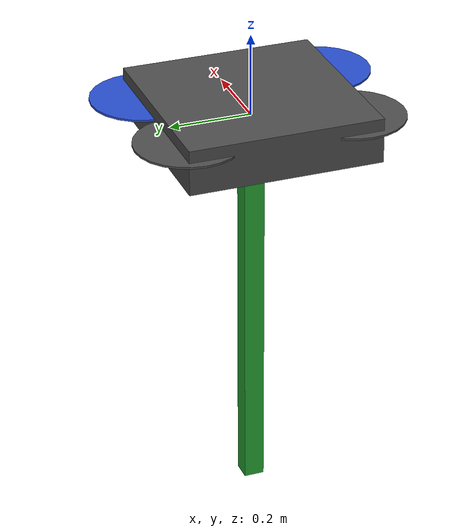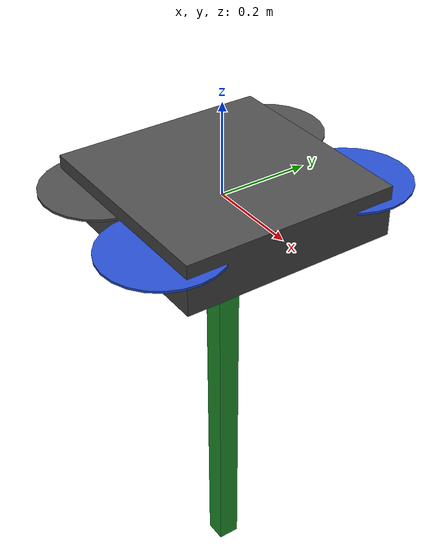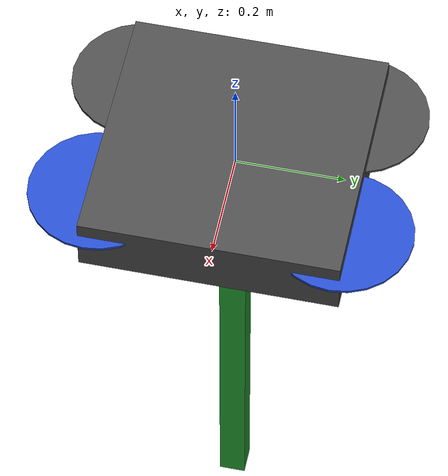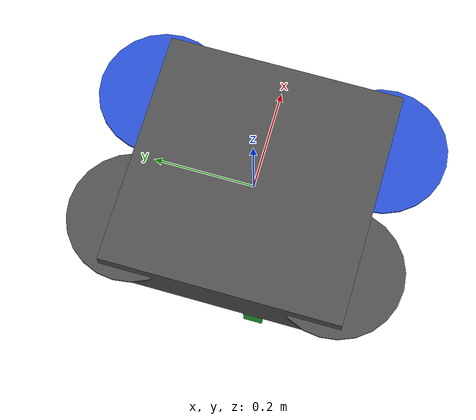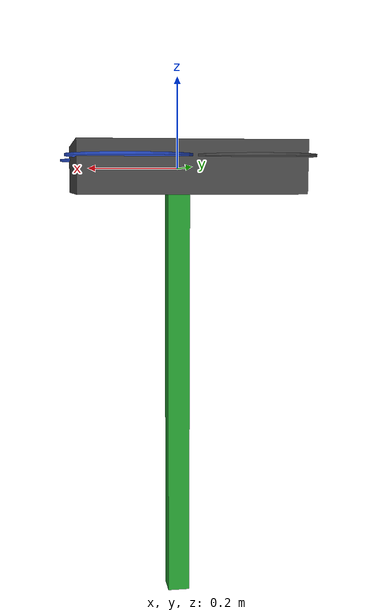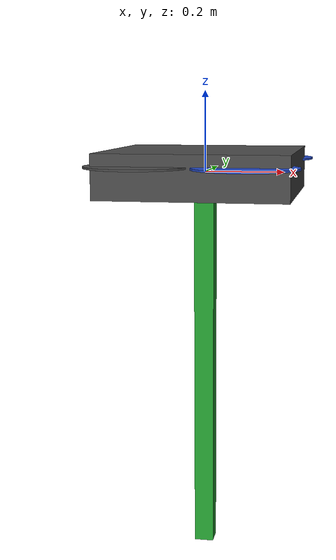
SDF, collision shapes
<?xml version='1.0'?>
<sdf version='1.5'>
  <model name='iris_fpv_cam'>

    <link name='base_link'>
      <pose frame=''>0 0 0 0 -0 0</pose>
      <inertial>
        <pose frame=''>0 0 0 0 -0 0</pose>
        <mass>1.5</mass>
        <inertia>
          <ixx>0.029125</ixx>
          <ixy>0</ixy>
          <ixz>0</ixz>
          <iyy>0.029125</iyy>
          <iyz>0</iyz>
          <izz>0.055225</izz>
        </inertia>
      </inertial>
      <collision name='base_link_inertia_collision'>
        <pose frame=''>0 0 0 0 -0 0</pose>
        <geometry>
          <box>
            <size>0.47 0.47 0.11</size>
          </box>
        </geometry>
        <surface>
          <contact>
            <ode>
              <min_depth>0.001</min_depth>
              <max_vel>0</max_vel>
            </ode>
          </contact>
          <friction>
            <ode/>
          </friction>
        </surface>
      </collision>
      <visual name='base_link_inertia_visual'>
        <pose frame=''>0 0 0 0 -0 0</pose>
        <geometry>
          <mesh>
            <scale>1 1 1</scale>
            <uri>model://rotors_description/meshes/iris.stl</uri>
          </mesh>
        </geometry>
        <material>
          <script>
            <name>Gazebo/DarkGrey</name>
            <uri>file://media/materials/scripts/gazebo.material</uri>
          </script>
        </material>
      </visual>
      <gravity>1</gravity>
      <velocity_decay/>
    </link>
    <link name='/imu_link'>
      <pose frame=''>0 0 0 0 -0 0</pose>
      <inertial>
        <pose frame=''>0 0 0 0 -0 0</pose>
        <mass>0.015</mass>
        <inertia>
          <ixx>1e-05</ixx>
          <ixy>0</ixy>
          <ixz>0</ixz>
          <iyy>1e-05</iyy>
          <iyz>0</iyz>
          <izz>1e-05</izz>
        </inertia>
      </inertial>
    </link>
    <joint name='/imu_joint' type='revolute'>
      <child>/imu_link</child>
      <parent>base_link</parent>
      <axis>
        <xyz>1 0 0</xyz>
        <limit>
          <lower>0</lower>
          <upper>0</upper>
          <effort>0</effort>
          <velocity>0</velocity>
        </limit>
        <dynamics>
          <spring_reference>0</spring_reference>
          <spring_stiffness>0</spring_stiffness>
        </dynamics>
        <use_parent_model_frame>1</use_parent_model_frame>
      </axis>
    </joint>
    <link name='rotor_0'>
      <pose frame=''>0.13 -0.22 0.023 0 -0 0</pose>
      <inertial>
        <pose frame=''>0 0 0 0 -0 0</pose>
        <mass>0.005</mass>
        <inertia>
          <ixx>9.75e-07</ixx>
          <ixy>0</ixy>
          <ixz>0</ixz>
          <iyy>0.000273104</iyy>
          <iyz>0</iyz>
          <izz>0.000274004</izz>
        </inertia>
      </inertial>
      <collision name='rotor_0_collision'>
        <pose frame=''>0 0 0 0 -0 0</pose>
        <geometry>
          <cylinder>
            <length>0.005</length>
            <radius>0.128</radius>
          </cylinder>
        </geometry>
        <surface>
          <contact>
            <ode/>
          </contact>
          <friction>
            <ode/>
          </friction>
        </surface>
      </collision>
      <visual name='rotor_0_visual'>
        <pose frame=''>0 0 0 0 -0 0</pose>
        <geometry>
          <mesh>
            <scale>1 1 1</scale>
            <uri>model://rotors_description/meshes/iris_prop_ccw.dae</uri>
          </mesh>
        </geometry>
        <material>
          <script>
            <name>Gazebo/Blue</name>
            <uri>file://media/materials/scripts/gazebo.material</uri>
          </script>
        </material>
      </visual>
      <gravity>1</gravity>
      <velocity_decay/>
    </link>
    <joint name='rotor_0_joint' type='revolute'>
      <child>rotor_0</child>
      <parent>base_link</parent>
      <axis>
        <xyz>0 0 1</xyz>
        <limit>
          <lower>-1e+16</lower>
          <upper>1e+16</upper>
        </limit>
        <dynamics>
          <spring_reference>0</spring_reference>
          <spring_stiffness>0</spring_stiffness>
        </dynamics>
        <use_parent_model_frame>1</use_parent_model_frame>
      </axis>
    </joint>
    <link name='rotor_1'>
      <pose frame=''>-0.13 0.2 0.023 0 -0 0</pose>
      <inertial>
        <pose frame=''>0 0 0 0 -0 0</pose>
        <mass>0.005</mass>
        <inertia>
          <ixx>9.75e-07</ixx>
          <ixy>0</ixy>
          <ixz>0</ixz>
          <iyy>0.000273104</iyy>
          <iyz>0</iyz>
          <izz>0.000274004</izz>
        </inertia>
      </inertial>
      <collision name='rotor_1_collision'>
        <pose frame=''>0 0 0 0 -0 0</pose>
        <geometry>
          <cylinder>
            <length>0.005</length>
            <radius>0.128</radius>
          </cylinder>
        </geometry>
        <surface>
          <contact>
            <ode/>
          </contact>
          <friction>
            <ode/>
          </friction>
        </surface>
      </collision>
      <visual name='rotor_1_visual'>
        <pose frame=''>0 0 0 0 -0 0</pose>
        <geometry>
          <mesh>
            <scale>1 1 1</scale>
            <uri>model://rotors_description/meshes/iris_prop_ccw.dae</uri>
          </mesh>
        </geometry>
        <material>
          <script>
            <name>Gazebo/DarkGrey</name>
            <uri>file://media/materials/scripts/gazebo.material</uri>
          </script>
        </material>
      </visual>
      <gravity>1</gravity>
      <velocity_decay/>
    </link>
    <joint name='rotor_1_joint' type='revolute'>
      <child>rotor_1</child>
      <parent>base_link</parent>
      <axis>
        <xyz>0 0 1</xyz>
        <limit>
          <lower>-1e+16</lower>
          <upper>1e+16</upper>
        </limit>
        <dynamics>
          <spring_reference>0</spring_reference>
          <spring_stiffness>0</spring_stiffness>
        </dynamics>
        <use_parent_model_frame>1</use_parent_model_frame>
      </axis>
    </joint>
    <link name='rotor_2'>
      <pose frame=''>0.13 0.22 0.023 0 -0 0</pose>
      <inertial>
        <pose frame=''>0 0 0 0 -0 0</pose>
        <mass>0.005</mass>
        <inertia>
          <ixx>9.75e-07</ixx>
          <ixy>0</ixy>
          <ixz>0</ixz>
          <iyy>0.000273104</iyy>
          <iyz>0</iyz>
          <izz>0.000274004</izz>
        </inertia>
      </inertial>
      <collision name='rotor_2_collision'>
        <pose frame=''>0 0 0 0 -0 0</pose>
        <geometry>
          <cylinder>
            <length>0.005</length>
            <radius>0.128</radius>
          </cylinder>
        </geometry>
        <surface>
          <contact>
            <ode/>
          </contact>
          <friction>
            <ode/>
          </friction>
        </surface>
      </collision>
      <visual name='rotor_2_visual'>
        <pose frame=''>0 0 0 0 -0 0</pose>
        <geometry>
          <mesh>
            <scale>1 1 1</scale>
            <uri>model://rotors_description/meshes/iris_prop_cw.dae</uri>
          </mesh>
        </geometry>
        <material>
          <script>
            <name>Gazebo/Blue</name>
            <uri>file://media/materials/scripts/gazebo.material</uri>
          </script>
        </material>
      </visual>
      <gravity>1</gravity>
      <velocity_decay/>
    </link>
    <joint name='rotor_2_joint' type='revolute'>
      <child>rotor_2</child>
      <parent>base_link</parent>
      <axis>
        <xyz>0 0 1</xyz>
        <limit>
          <lower>-1e+16</lower>
          <upper>1e+16</upper>
        </limit>
        <dynamics>
          <spring_reference>0</spring_reference>
          <spring_stiffness>0</spring_stiffness>
        </dynamics>
        <use_parent_model_frame>1</use_parent_model_frame>
      </axis>
    </joint>
    <link name='rotor_3'>
      <pose frame=''>-0.13 -0.2 0.023 0 -0 0</pose>
      <inertial>
        <pose frame=''>0 0 0 0 -0 0</pose>
        <mass>0.005</mass>
        <inertia>
          <ixx>9.75e-07</ixx>
          <ixy>0</ixy>
          <ixz>0</ixz>
          <iyy>0.000273104</iyy>
          <iyz>0</iyz>
          <izz>0.000274004</izz>
        </inertia>
      </inertial>
      <collision name='rotor_3_collision'>
        <pose frame=''>0 0 0 0 -0 0</pose>
        <geometry>
          <cylinder>
            <length>0.005</length>
            <radius>0.128</radius>
          </cylinder>
        </geometry>
        <surface>
          <contact>
            <ode/>
          </contact>
          <friction>
            <ode/>
          </friction>
        </surface>
      </collision>
      <visual name='rotor_3_visual'>
        <pose frame=''>0 0 0 0 -0 0</pose>
        <geometry>
          <mesh>
            <scale>1 1 1</scale>
            <uri>model://rotors_description/meshes/iris_prop_cw.dae</uri>
          </mesh>
        </geometry>
        <material>
          <script>
            <name>Gazebo/DarkGrey</name>
            <uri>file://media/materials/scripts/gazebo.material</uri>
          </script>
        </material>
      </visual>
      <gravity>1</gravity>
      <velocity_decay/>
    </link>
    <joint name='rotor_3_joint' type='revolute'>
      <child>rotor_3</child>
      <parent>base_link</parent>
      <axis>
        <xyz>0 0 1</xyz>
        <limit>
          <lower>-1e+16</lower>
          <upper>1e+16</upper>
        </limit>
        <dynamics>
          <spring_reference>0</spring_reference>
          <spring_stiffness>0</spring_stiffness>
        </dynamics>
        <use_parent_model_frame>1</use_parent_model_frame>
      </axis>
    </joint>
    <plugin name='rosbag' filename='libgazebo_multirotor_base_plugin.so'>
      <robotNamespace/>
      <linkName>base_link</linkName>
      <rotorVelocitySlowdownSim>10</rotorVelocitySlowdownSim>
    </plugin>
    <plugin name='front_right_motor_model' filename='libgazebo_motor_model.so'>
      <robotNamespace/>
      <jointName>rotor_0_joint</jointName>
      <linkName>rotor_0</linkName>
      <turningDirection>ccw</turningDirection>
      <timeConstantUp>0.0125</timeConstantUp>
      <timeConstantDown>0.025</timeConstantDown>
      <maxRotVelocity>1100</maxRotVelocity>
      <motorConstant>8.54858e-06</motorConstant>
      <momentConstant>0.06</momentConstant>
      <commandSubTopic>/gazebo/command/motor_speed</commandSubTopic>
      <motorNumber>0</motorNumber>
      <rotorDragCoefficient>0.000175</rotorDragCoefficient>
      <rollingMomentCoefficient>1e-06</rollingMomentCoefficient>
      <motorSpeedPubTopic>/motor_speed/0</motorSpeedPubTopic>
      <rotorVelocitySlowdownSim>10</rotorVelocitySlowdownSim>
    </plugin>
    <plugin name='back_left_motor_model' filename='libgazebo_motor_model.so'>
      <robotNamespace/>
      <jointName>rotor_1_joint</jointName>
      <linkName>rotor_1</linkName>
      <turningDirection>ccw</turningDirection>
      <timeConstantUp>0.0125</timeConstantUp>
      <timeConstantDown>0.025</timeConstantDown>
      <maxRotVelocity>1100</maxRotVelocity>
      <motorConstant>8.54858e-06</motorConstant>
      <momentConstant>0.06</momentConstant>
      <commandSubTopic>/gazebo/command/motor_speed</commandSubTopic>
      <motorNumber>1</motorNumber>
      <rotorDragCoefficient>0.000175</rotorDragCoefficient>
      <rollingMomentCoefficient>1e-06</rollingMomentCoefficient>
      <motorSpeedPubTopic>/motor_speed/1</motorSpeedPubTopic>
      <rotorVelocitySlowdownSim>10</rotorVelocitySlowdownSim>
    </plugin>
    <plugin name='front_left_motor_model' filename='libgazebo_motor_model.so'>
      <robotNamespace/>
      <jointName>rotor_2_joint</jointName>
      <linkName>rotor_2</linkName>
      <turningDirection>cw</turningDirection>
      <timeConstantUp>0.0125</timeConstantUp>
      <timeConstantDown>0.025</timeConstantDown>
      <maxRotVelocity>1100</maxRotVelocity>
      <motorConstant>8.54858e-06</motorConstant>
      <momentConstant>0.06</momentConstant>
      <commandSubTopic>/gazebo/command/motor_speed</commandSubTopic>
      <motorNumber>2</motorNumber>
      <rotorDragCoefficient>0.000175</rotorDragCoefficient>
      <rollingMomentCoefficient>1e-06</rollingMomentCoefficient>
      <motorSpeedPubTopic>/motor_speed/2</motorSpeedPubTopic>
      <rotorVelocitySlowdownSim>10</rotorVelocitySlowdownSim>
    </plugin>
    <plugin name='back_right_motor_model' filename='libgazebo_motor_model.so'>
      <robotNamespace/>
      <jointName>rotor_3_joint</jointName>
      <linkName>rotor_3</linkName>
      <turningDirection>cw</turningDirection>
      <timeConstantUp>0.0125</timeConstantUp>
      <timeConstantDown>0.025</timeConstantDown>
      <maxRotVelocity>1100</maxRotVelocity>
      <motorConstant>8.54858e-06</motorConstant>
      <momentConstant>0.06</momentConstant>
      <commandSubTopic>/gazebo/command/motor_speed</commandSubTopic>
      <motorNumber>3</motorNumber>
      <rotorDragCoefficient>0.000175</rotorDragCoefficient>
      <rollingMomentCoefficient>1e-06</rollingMomentCoefficient>
      <motorSpeedPubTopic>/motor_speed/3</motorSpeedPubTopic>
      <rotorVelocitySlowdownSim>10</rotorVelocitySlowdownSim>
    </plugin>
    <plugin name='gps_plugin' filename='libgazebo_gps_plugin.so'>
      <robotNamespace/>
      <gpsNoise>1</gpsNoise>
    </plugin>
    <plugin name='magnetometer_plugin' filename='libgazebo_magnetometer_plugin.so'>
      <robotNamespace/>
      <pubRate>100</pubRate>
      <noiseDensity>0.0004</noiseDensity>
      <randomWalk>6.4e-06</randomWalk>
      <biasCorrelationTime>600</biasCorrelationTime>
      <magTopic>/mag</magTopic>
    </plugin>
    <plugin name='barometer_plugin' filename='libgazebo_barometer_plugin.so'>
      <robotNamespace/>
      <pubRate>50</pubRate>
      <baroTopic>/baro</baroTopic>
    </plugin>
    <plugin name='mavlink_interface' filename='libgazebo_mavlink_interface.so'>
      <robotNamespace/>
      <imuSubTopic>/imu</imuSubTopic>
      <gpsSubTopic>/gps</gpsSubTopic>
      <magSubTopic>/mag</magSubTopic>
      <baroSubTopic>/baro</baroSubTopic>
      <mavlink_addr>INADDR_ANY</mavlink_addr>
      <mavlink_udp_port>14560</mavlink_udp_port>
      <mavlink_tcp_port>4560</mavlink_tcp_port>
      <serialEnabled>0</serialEnabled>
      <serialDevice>/dev/ttyACM0</serialDevice>
      <baudRate>921600</baudRate>
      <qgc_addr>INADDR_ANY</qgc_addr>
      <qgc_udp_port>14550</qgc_udp_port>
      <sdk_addr>INADDR_ANY</sdk_addr>
      <sdk_udp_port>14540</sdk_udp_port>
      <hil_mode>0</hil_mode>
      <hil_state_level>0</hil_state_level>
      <vehicle_is_tailsitter>0</vehicle_is_tailsitter>
      <send_vision_estimation>0</send_vision_estimation>
      <send_odometry>1</send_odometry>
      <enable_lockstep>1</enable_lockstep>
      <use_tcp>1</use_tcp>
      <motorSpeedCommandPubTopic>/gazebo/command/motor_speed</motorSpeedCommandPubTopic>
      <control_channels>
        <channel name='rotor1'>
          <input_index>0</input_index>
          <input_offset>0</input_offset>
          <input_scaling>1000</input_scaling>
          <zero_position_disarmed>0</zero_position_disarmed>
          <zero_position_armed>100</zero_position_armed>
          <joint_control_type>velocity</joint_control_type>
        </channel>
        <channel name='rotor2'>
          <input_index>1</input_index>
          <input_offset>0</input_offset>
          <input_scaling>1000</input_scaling>
          <zero_position_disarmed>0</zero_position_disarmed>
          <zero_position_armed>100</zero_position_armed>
          <joint_control_type>velocity</joint_control_type>
        </channel>
        <channel name='rotor3'>
          <input_index>2</input_index>
          <input_offset>0</input_offset>
          <input_scaling>1000</input_scaling>
          <zero_position_disarmed>0</zero_position_disarmed>
          <zero_position_armed>100</zero_position_armed>
          <joint_control_type>velocity</joint_control_type>
        </channel>
        <channel name='rotor4'>
          <input_index>3</input_index>
          <input_offset>0</input_offset>
          <input_scaling>1000</input_scaling>
          <zero_position_disarmed>0</zero_position_disarmed>
          <zero_position_armed>100</zero_position_armed>
          <joint_control_type>velocity</joint_control_type>
        </channel>
        <channel name='rotor5'>
          <input_index>4</input_index>
          <input_offset>1</input_offset>
          <input_scaling>324.6</input_scaling>
          <zero_position_disarmed>0</zero_position_disarmed>
          <zero_position_armed>0</zero_position_armed>
          <joint_control_type>velocity</joint_control_type>
          <joint_control_pid>
            <p>0.1</p>
            <i>0</i>
            <d>0</d>
            <iMax>0.0</iMax>
            <iMin>0.0</iMin>
            <cmdMax>2</cmdMax>
            <cmdMin>-2</cmdMin>
          </joint_control_pid>
          <joint_name>zephyr_delta_wing::propeller_joint</joint_name>
        </channel>
        <channel name='rotor6'>
          <input_index>5</input_index>
          <input_offset>0</input_offset>
          <input_scaling>0.524</input_scaling>
          <zero_position_disarmed>0</zero_position_disarmed>
          <zero_position_armed>0</zero_position_armed>
          <joint_control_type>position</joint_control_type>
          <joint_name>zephyr_delta_wing::flap_left_joint</joint_name>
          <joint_control_pid>
            <p>10.0</p>
            <i>0</i>
            <d>0</d>
            <iMax>0</iMax>
            <iMin>0</iMin>
            <cmdMax>20</cmdMax>
            <cmdMin>-20</cmdMin>
          </joint_control_pid>
        </channel>
        <channel name='rotor7'>
          <input_index>6</input_index>
          <input_offset>0</input_offset>
          <input_scaling>0.524</input_scaling>
          <zero_position_disarmed>0</zero_position_disarmed>
          <zero_position_armed>0</zero_position_armed>
          <joint_control_type>position</joint_control_type>
          <joint_name>zephyr_delta_wing::flap_right_joint</joint_name>
          <joint_control_pid>
            <p>10.0</p>
            <i>0</i>
            <d>0</d>
            <iMax>0</iMax>
            <iMin>0</iMin>
            <cmdMax>20</cmdMax>
            <cmdMin>-20</cmdMin>
          </joint_control_pid>
        </channel>
        <channel name='rotor8'>
          <input_index>7</input_index>
          <input_offset>0</input_offset>
          <input_scaling>0.524</input_scaling>
          <zero_position_disarmed>0</zero_position_disarmed>
          <zero_position_armed>0</zero_position_armed>
          <joint_control_type>position</joint_control_type>
        </channel>
      </control_channels>
    </plugin>
    <static>0</static>
    <plugin name='rotors_gazebo_imu_plugin' filename='libgazebo_imu_plugin.so'>
      <robotNamespace/>
      <linkName>/imu_link</linkName>
      <imuTopic>/imu</imuTopic>
      <gyroscopeNoiseDensity>0.00018665</gyroscopeNoiseDensity>
      <gyroscopeRandomWalk>3.8785e-05</gyroscopeRandomWalk>
      <gyroscopeBiasCorrelationTime>1000.0</gyroscopeBiasCorrelationTime>
      <gyroscopeTurnOnBiasSigma>0.0087</gyroscopeTurnOnBiasSigma>
      <accelerometerNoiseDensity>0.00186</accelerometerNoiseDensity>
      <accelerometerRandomWalk>0.006</accelerometerRandomWalk>
      <accelerometerBiasCorrelationTime>300.0</accelerometerBiasCorrelationTime>
      <accelerometerTurnOnBiasSigma>0.196</accelerometerTurnOnBiasSigma>
    </plugin>

      <link name='link'>
      <pose>0 0 0 0 0 0</pose>
        <inertial>
          <mass>0.015</mass>
          <inertia>
            <ixx>4.15e-6</ixx>
          <ixy>0</ixy>
          <ixz>0</ixz>
          <iyy>2.407e-6</iyy>
          <iyz>0</iyz>
          <izz>2.407e-6</izz>
          </inertia>
        </inertial>
        <collision name='collision'>
          <geometry>
            <box>
              <size>0.01 0.01 0.01</size>
            </box>
          </geometry>
          <max_contacts>10</max_contacts>
          <surface>
            <contact>
              <ode/>
            </contact>
            <bounce/>
            <friction>
              <ode/>
            </friction>
          </surface>
        </collision>
        <visual name='visual'>
          <geometry>
            <box>
              <size>0.01 0.01 0.01</size>
            </box>
          </geometry>
        </visual>
        <sensor name='camera' type='camera'>
          <camera name='__default__'>
            <horizontal_fov>1.047</horizontal_fov>
            <image>
              <width>640</width>
              <height>480</height>
            </image>
            <clip>
              <near>0.1</near>
              <far>200</far>
            </clip>
            <lens>
              <type>custom</type>
              <custom_function>
                <c1>1.05</c1>
                <c2>4</c2>
                <f>1</f>
                <fun>tan</fun>
              </custom_function>
              <scale_to_hfov>1</scale_to_hfov>
              <cutoff_angle>3.1415</cutoff_angle>
              <env_texture_size>1080</env_texture_size>
            </lens>
          </camera>
          <always_on>1</always_on>
          <update_rate>30</update_rate>
          <visualize>1</visualize>
          <plugin name='camera_plugin' filename='libgazebo_ros_camera.so'>
              <robotNamespace></robotNamespace>
            <alwaysOn>true</alwaysOn>
            <imageTopicName>image_raw</imageTopicName>
            <cameraInfoTopicName>camera_info</cameraInfoTopicName>
            <updateRate>30.0</updateRate>
            <cameraName>usb_cam</cameraName>
            <frameName>/robot_camera_link</frameName>
            <CxPrime>320.5</CxPrime>
            <Cx>320.5</Cx>
            <Cy>240.5</Cy>
            <hackBaseline>0</hackBaseline>
            <focalLength>554.382713</focalLength>
            <distortionK1>0.0</distortionK1>
            <distortionK2>0.0</distortionK2>
            <distortionK3>0.0</distortionK3>
            <distortionT1>0.0</distortionT1>
            <distortionT2>0.0</distortionT2>
          </plugin>
          <!-- GStreamer camera plugin (needs a lot of CPU! Consider lowering the
             camera image size) -->
          <plugin name="GstCameraPlugin" filename="libgazebo_gst_camera_plugin.so">
            <robotNamespace></robotNamespace>
            <udpPort>5600</udpPort>
          </plugin>
        </sensor>
        <self_collide>0</self_collide>
        <kinematic>0</kinematic>
      </link>

    <joint name="fpv_cam_joint" type="fixed">
      <child>link</child>
      <parent>base_link</parent>
      <axis>
        <xyz>0 0 1</xyz>
        <limit>
          <upper>0</upper>
          <lower>0</lower>
        </limit>
      </axis>
    </joint>
    <link name='bat'>
      <pose frame=''>0 0 -0.5 0 0 0</pose>
      <inertial>
        <pose frame=''>0 0 0 0 -0 0</pose>
        <mass>.5</mass>
        <inertia>
          <ixx>0.000208</ixx>
          <ixy>0</ixy>
          <ixz>0</ixz>
          <iyy>0.04177</iyy>
          <iyz>0</iyz>
          <izz>0.04177</izz>
        </inertia>
      </inertial>

      <collision name='bat_collision'>
        <geometry>
          <box>
            <size>.05 .05 1</size>
          </box>
        </geometry>
      </collision>

      <visual name='bat_visual'>
        <geometry>
          <box>
            <size>.05 .05 1</size>
          </box>
        </geometry>
        <material>
          <script>
            <uri>file://media/materials/scripts/gazebo.material</uri>
            <name>Gazebo/Green</name>
          </script>
        </material>

      </visual>
    </link>
    <joint name='bat_joint' type='ball'>
      <pose frame=''>0 0 0.5 0 0 0</pose>
      <child>bat</child>
      <parent>base_link</parent>
      <axis1>1 0 0</axis1>
      <axis2>0 1 0</axis2>
    </joint>

  </model>
</sdf>
